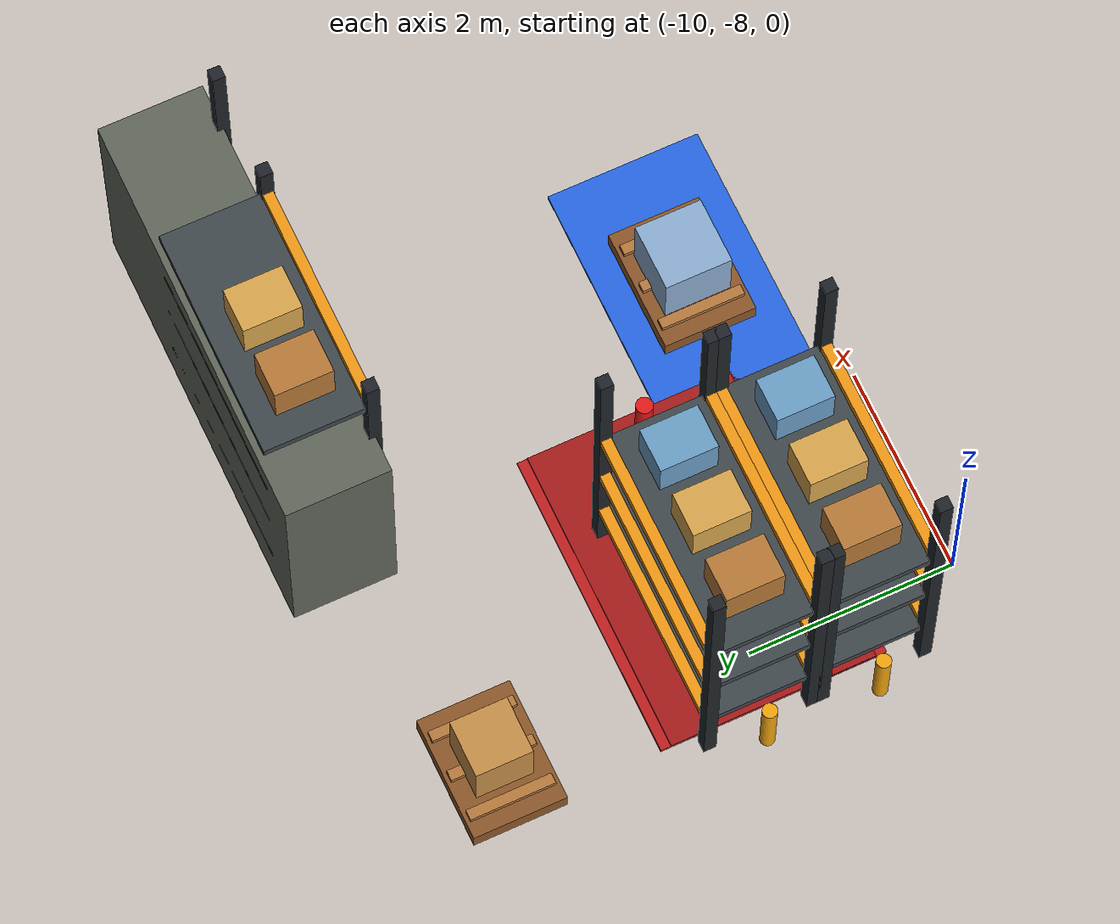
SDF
<sdf version="1.9">
 <world name="synaids_advanced_warehouse">
  <model name="shelf_4">
   <static>true</static>
   <pose>-6 -3 1.2 0 0 0</pose>
   <link name="link">
    <collision name="collision"><geometry><box><size>4 1.0 2.4</size></box></geometry></collision>
    <visual name="visual">
     <geometry><box><size>4 1.0 2.4</size></box></geometry>
     <material><ambient>0.20 0.20 0.18 1</ambient><diffuse>0.38 0.40 0.36 1</diffuse></material>
    </visual>
   </link>
  </model>
  <model name="restricted_zone">
   <static>true</static>
   <pose>-9 -6 0.02 0 0 0</pose>
   <link name="link">
    <visual name="visual">
     <geometry><box><size>3 2 0.04</size></box></geometry>
     <material><ambient>0.35 0.04 0.04 1</ambient><diffuse>0.65 0.10 0.10 1</diffuse></material>
    </visual>
   </link>
  </model>
  <model name="storage_rack_5_post_0">
   <static>true</static>
   <pose>-7.6 -3.5 1.7 0 0 0</pose>
   <link name="link">
    <visual name="visual">
     <geometry><box><size>0.12 0.12 3.4</size></box></geometry>
     <material>
      <ambient>0.12 0.14 0.16 1</ambient>
      <diffuse>0.12 0.14 0.16 1</diffuse>
      <specular>0.15 0.15 0.15 1</specular>
     </material>
    </visual>
    <collision name="collision"><geometry><box><size>0.12 0.12 3.4</size></box></geometry></collision>
   </link>
  </model>
  <model name="storage_rack_5_post_2">
   <static>true</static>
   <pose>-5.4 -3.5 1.7 0 0 0</pose>
   <link name="link">
    <visual name="visual">
     <geometry><box><size>0.12 0.12 3.4</size></box></geometry>
     <material>
      <ambient>0.12 0.14 0.16 1</ambient>
      <diffuse>0.12 0.14 0.16 1</diffuse>
      <specular>0.15 0.15 0.15 1</specular>
     </material>
    </visual>
    <collision name="collision"><geometry><box><size>0.12 0.12 3.4</size></box></geometry></collision>
   </link>
  </model>
  <model name="storage_rack_5_beam_front_0">
   <static>true</static>
   <pose>-6.5 -3.5 0.65 0 0 0</pose>
   <link name="link">
    <visual name="visual">
     <geometry><box><size>2.2 0.1 0.1</size></box></geometry>
     <material>
      <ambient>0.95 0.60 0.08 1</ambient>
      <diffuse>0.95 0.60 0.08 1</diffuse>
      <specular>0.15 0.15 0.15 1</specular>
     </material>
    </visual>
    <collision name="collision"><geometry><box><size>2.2 0.1 0.1</size></box></geometry></collision>
   </link>
  </model>
  <model name="storage_rack_5_shelf_0">
   <static>true</static>
   <pose>-6.5 -3.0 0.5700000000000001 0 0 0</pose>
   <link name="link">
    <visual name="visual">
     <geometry><box><size>2.2 1.0 0.08</size></box></geometry>
     <material>
      <ambient>0.25 0.28 0.30 1</ambient>
      <diffuse>0.25 0.28 0.30 1</diffuse>
      <specular>0.15 0.15 0.15 1</specular>
     </material>
    </visual>
    <collision name="collision"><geometry><box><size>2.2 1.0 0.08</size></box></geometry></collision>
   </link>
  </model>
  <model name="storage_rack_5_package_0_0">
   <static>true</static>
   <pose>-7.15 -3.0 0.87 0 0 0</pose>
   <link name="link">
    <visual name="visual">
     <geometry><box><size>0.42 0.55 0.42</size></box></geometry>
     <material>
      <ambient>0.72 0.48 0.22 1</ambient>
      <diffuse>0.72 0.48 0.22 1</diffuse>
      <specular>0.15 0.15 0.15 1</specular>
     </material>
    </visual>
    <collision name="collision"><geometry><box><size>0.42 0.55 0.42</size></box></geometry></collision>
   </link>
  </model>
  <model name="storage_rack_5_package_0_1">
   <static>true</static>
   <pose>-6.5 -3.0 0.87 0 0 0</pose>
   <link name="link">
    <visual name="visual">
     <geometry><box><size>0.42 0.55 0.42</size></box></geometry>
     <material>
      <ambient>0.85 0.65 0.30 1</ambient>
      <diffuse>0.85 0.65 0.30 1</diffuse>
      <specular>0.15 0.15 0.15 1</specular>
     </material>
    </visual>
    <collision name="collision"><geometry><box><size>0.42 0.55 0.42</size></box></geometry></collision>
   </link>
  </model>
  <model name="storage_rack_5_package_0_2">
   <static>true</static>
   <pose>-5.8500000000000005 -3.0 0.87 0 0 0</pose>
   <link name="link">
    <visual name="visual">
     <geometry><box><size>0.42 0.55 0.42</size></box></geometry>
     <material>
      <ambient>0.42 0.62 0.78 1</ambient>
      <diffuse>0.42 0.62 0.78 1</diffuse>
      <specular>0.15 0.15 0.15 1</specular>
     </material>
    </visual>
    <collision name="collision"><geometry><box><size>0.42 0.55 0.42</size></box></geometry></collision>
   </link>
  </model>
  <model name="storage_rack_5_beam_front_1">
   <static>true</static>
   <pose>-6.5 -3.5 1.4300000000000002 0 0 0</pose>
   <link name="link">
    <visual name="visual">
     <geometry><box><size>2.2 0.1 0.1</size></box></geometry>
     <material>
      <ambient>0.95 0.60 0.08 1</ambient>
      <diffuse>0.95 0.60 0.08 1</diffuse>
      <specular>0.15 0.15 0.15 1</specular>
     </material>
    </visual>
    <collision name="collision"><geometry><box><size>2.2 0.1 0.1</size></box></geometry></collision>
   </link>
  </model>
  <model name="storage_rack_5_shelf_1">
   <static>true</static>
   <pose>-6.5 -3.0 1.35 0 0 0</pose>
   <link name="link">
    <visual name="visual">
     <geometry><box><size>2.2 1.0 0.08</size></box></geometry>
     <material>
      <ambient>0.25 0.28 0.30 1</ambient>
      <diffuse>0.25 0.28 0.30 1</diffuse>
      <specular>0.15 0.15 0.15 1</specular>
     </material>
    </visual>
    <collision name="collision"><geometry><box><size>2.2 1.0 0.08</size></box></geometry></collision>
   </link>
  </model>
  <model name="storage_rack_5_package_1_0">
   <static>true</static>
   <pose>-7.15 -3.0 1.6500000000000001 0 0 0</pose>
   <link name="link">
    <visual name="visual">
     <geometry><box><size>0.42 0.55 0.42</size></box></geometry>
     <material>
      <ambient>0.72 0.48 0.22 1</ambient>
      <diffuse>0.72 0.48 0.22 1</diffuse>
      <specular>0.15 0.15 0.15 1</specular>
     </material>
    </visual>
    <collision name="collision"><geometry><box><size>0.42 0.55 0.42</size></box></geometry></collision>
   </link>
  </model>
  <model name="storage_rack_5_package_1_1">
   <static>true</static>
   <pose>-6.5 -3.0 1.6500000000000001 0 0 0</pose>
   <link name="link">
    <visual name="visual">
     <geometry><box><size>0.42 0.55 0.42</size></box></geometry>
     <material>
      <ambient>0.85 0.65 0.30 1</ambient>
      <diffuse>0.85 0.65 0.30 1</diffuse>
      <specular>0.15 0.15 0.15 1</specular>
     </material>
    </visual>
    <collision name="collision"><geometry><box><size>0.42 0.55 0.42</size></box></geometry></collision>
   </link>
  </model>
  <model name="storage_rack_5_beam_front_2">
   <static>true</static>
   <pose>-6.5 -3.5 2.21 0 0 0</pose>
   <link name="link">
    <visual name="visual">
     <geometry><box><size>2.2 0.1 0.1</size></box></geometry>
     <material>
      <ambient>0.95 0.60 0.08 1</ambient>
      <diffuse>0.95 0.60 0.08 1</diffuse>
      <specular>0.15 0.15 0.15 1</specular>
     </material>
    </visual>
    <collision name="collision"><geometry><box><size>2.2 0.1 0.1</size></box></geometry></collision>
   </link>
  </model>
  <model name="storage_rack_5_shelf_2">
   <static>true</static>
   <pose>-6.5 -3.0 2.13 0 0 0</pose>
   <link name="link">
    <visual name="visual">
     <geometry><box><size>2.2 1.0 0.08</size></box></geometry>
     <material>
      <ambient>0.25 0.28 0.30 1</ambient>
      <diffuse>0.25 0.28 0.30 1</diffuse>
      <specular>0.15 0.15 0.15 1</specular>
     </material>
    </visual>
    <collision name="collision"><geometry><box><size>2.2 1.0 0.08</size></box></geometry></collision>
   </link>
  </model>
  <model name="storage_rack_5_package_2_0">
   <static>true</static>
   <pose>-7.15 -3.0 2.43 0 0 0</pose>
   <link name="link">
    <visual name="visual">
     <geometry><box><size>0.42 0.55 0.42</size></box></geometry>
     <material>
      <ambient>0.72 0.48 0.22 1</ambient>
      <diffuse>0.72 0.48 0.22 1</diffuse>
      <specular>0.15 0.15 0.15 1</specular>
     </material>
    </visual>
    <collision name="collision"><geometry><box><size>0.42 0.55 0.42</size></box></geometry></collision>
   </link>
  </model>
  <model name="storage_rack_5_package_2_1">
   <static>true</static>
   <pose>-6.5 -3.0 2.43 0 0 0</pose>
   <link name="link">
    <visual name="visual">
     <geometry><box><size>0.42 0.55 0.42</size></box></geometry>
     <material>
      <ambient>0.85 0.65 0.30 1</ambient>
      <diffuse>0.85 0.65 0.30 1</diffuse>
      <specular>0.15 0.15 0.15 1</specular>
     </material>
    </visual>
    <collision name="collision"><geometry><box><size>0.42 0.55 0.42</size></box></geometry></collision>
   </link>
  </model>
  <model name="storage_rack_5_beam_front_3">
   <static>true</static>
   <pose>-6.5 -3.5 2.9899999999999998 0 0 0</pose>
   <link name="link">
    <visual name="visual">
     <geometry><box><size>2.2 0.1 0.1</size></box></geometry>
     <material>
      <ambient>0.95 0.60 0.08 1</ambient>
      <diffuse>0.95 0.60 0.08 1</diffuse>
      <specular>0.15 0.15 0.15 1</specular>
     </material>
    </visual>
    <collision name="collision"><geometry><box><size>2.2 0.1 0.1</size></box></geometry></collision>
   </link>
  </model>
  <model name="storage_rack_5_shelf_3">
   <static>true</static>
   <pose>-6.5 -3.0 2.9099999999999997 0 0 0</pose>
   <link name="link">
    <visual name="visual">
     <geometry><box><size>2.2 1.0 0.08</size></box></geometry>
     <material>
      <ambient>0.25 0.28 0.30 1</ambient>
      <diffuse>0.25 0.28 0.30 1</diffuse>
      <specular>0.15 0.15 0.15 1</specular>
     </material>
    </visual>
    <collision name="collision"><geometry><box><size>2.2 1.0 0.08</size></box></geometry></collision>
   </link>
  </model>
  <model name="storage_rack_5_package_3_0">
   <static>true</static>
   <pose>-7.15 -3.0 3.21 0 0 0</pose>
   <link name="link">
    <visual name="visual">
     <geometry><box><size>0.42 0.55 0.42</size></box></geometry>
     <material>
      <ambient>0.72 0.48 0.22 1</ambient>
      <diffuse>0.72 0.48 0.22 1</diffuse>
      <specular>0.15 0.15 0.15 1</specular>
     </material>
    </visual>
    <collision name="collision"><geometry><box><size>0.42 0.55 0.42</size></box></geometry></collision>
   </link>
  </model>
  <model name="storage_rack_5_package_3_1">
   <static>true</static>
   <pose>-6.5 -3.0 3.21 0 0 0</pose>
   <link name="link">
    <visual name="visual">
     <geometry><box><size>0.42 0.55 0.42</size></box></geometry>
     <material>
      <ambient>0.85 0.65 0.30 1</ambient>
      <diffuse>0.85 0.65 0.30 1</diffuse>
      <specular>0.15 0.15 0.15 1</specular>
     </material>
    </visual>
    <collision name="collision"><geometry><box><size>0.42 0.55 0.42</size></box></geometry></collision>
   </link>
  </model>
  <model name="storage_rack_5_guard_left">
   <static>true</static>
   <pose>-7.779999999999999 -3.0 0.35 0 0 0</pose>
   <link name="link">
    <visual name="visual">
     <geometry><cylinder><radius>0.07</radius><length>0.7</length></cylinder></geometry>
     <material>
      <ambient>0.95 0.65 0.05 1</ambient>
      <diffuse>0.95 0.65 0.05 1</diffuse>
      <specular>0.15 0.15 0.15 1</specular>
     </material>
    </visual>
    <collision name="collision">
     <geometry><cylinder><radius>0.07</radius><length>0.7</length></cylinder></geometry>
    </collision>
   </link>
  </model>
  <model name="storage_rack_6_post_0">
   <static>true</static>
   <pose>-4.4 -3.5 1.7 0 0 0</pose>
   <link name="link">
    <visual name="visual">
     <geometry><box><size>0.12 0.12 3.4</size></box></geometry>
     <material>
      <ambient>0.12 0.14 0.16 1</ambient>
      <diffuse>0.12 0.14 0.16 1</diffuse>
      <specular>0.15 0.15 0.15 1</specular>
     </material>
    </visual>
    <collision name="collision"><geometry><box><size>0.12 0.12 3.4</size></box></geometry></collision>
   </link>
  </model>
  <model name="wall_rack_3_post_0">
   <static>true</static>
   <pose>-10.6 -6.3 1.7 0 0 0</pose>
   <link name="link">
    <visual name="visual">
     <geometry><box><size>0.12 0.12 3.4</size></box></geometry>
     <material>
      <ambient>0.12 0.14 0.16 1</ambient>
      <diffuse>0.12 0.14 0.16 1</diffuse>
      <specular>0.15 0.15 0.15 1</specular>
     </material>
    </visual>
    <collision name="collision"><geometry><box><size>0.12 0.12 3.4</size></box></geometry></collision>
   </link>
  </model>
  <model name="wall_rack_3_post_1">
   <static>true</static>
   <pose>-10.6 -5.3 1.7 0 0 0</pose>
   <link name="link">
    <visual name="visual">
     <geometry><box><size>0.12 0.12 3.4</size></box></geometry>
     <material>
      <ambient>0.12 0.14 0.16 1</ambient>
      <diffuse>0.12 0.14 0.16 1</diffuse>
      <specular>0.15 0.15 0.15 1</specular>
     </material>
    </visual>
    <collision name="collision"><geometry><box><size>0.12 0.12 3.4</size></box></geometry></collision>
   </link>
  </model>
  <model name="wall_rack_3_post_2">
   <static>true</static>
   <pose>-8.4 -6.3 1.7 0 0 0</pose>
   <link name="link">
    <visual name="visual">
     <geometry><box><size>0.12 0.12 3.4</size></box></geometry>
     <material>
      <ambient>0.12 0.14 0.16 1</ambient>
      <diffuse>0.12 0.14 0.16 1</diffuse>
      <specular>0.15 0.15 0.15 1</specular>
     </material>
    </visual>
    <collision name="collision"><geometry><box><size>0.12 0.12 3.4</size></box></geometry></collision>
   </link>
  </model>
  <model name="wall_rack_3_post_3">
   <static>true</static>
   <pose>-8.4 -5.3 1.7 0 0 0</pose>
   <link name="link">
    <visual name="visual">
     <geometry><box><size>0.12 0.12 3.4</size></box></geometry>
     <material>
      <ambient>0.12 0.14 0.16 1</ambient>
      <diffuse>0.12 0.14 0.16 1</diffuse>
      <specular>0.15 0.15 0.15 1</specular>
     </material>
    </visual>
    <collision name="collision"><geometry><box><size>0.12 0.12 3.4</size></box></geometry></collision>
   </link>
  </model>
  <model name="wall_rack_3_beam_front_0">
   <static>true</static>
   <pose>-9.5 -6.3 0.65 0 0 0</pose>
   <link name="link">
    <visual name="visual">
     <geometry><box><size>2.2 0.1 0.1</size></box></geometry>
     <material>
      <ambient>0.95 0.60 0.08 1</ambient>
      <diffuse>0.95 0.60 0.08 1</diffuse>
      <specular>0.15 0.15 0.15 1</specular>
     </material>
    </visual>
    <collision name="collision"><geometry><box><size>2.2 0.1 0.1</size></box></geometry></collision>
   </link>
  </model>
  <model name="wall_rack_3_beam_back_0">
   <static>true</static>
   <pose>-9.5 -5.3 0.65 0 0 0</pose>
   <link name="link">
    <visual name="visual">
     <geometry><box><size>2.2 0.1 0.1</size></box></geometry>
     <material>
      <ambient>0.95 0.60 0.08 1</ambient>
      <diffuse>0.95 0.60 0.08 1</diffuse>
      <specular>0.15 0.15 0.15 1</specular>
     </material>
    </visual>
    <collision name="collision"><geometry><box><size>2.2 0.1 0.1</size></box></geometry></collision>
   </link>
  </model>
  <model name="wall_rack_3_shelf_0">
   <static>true</static>
   <pose>-9.5 -5.8 0.5700000000000001 0 0 0</pose>
   <link name="link">
    <visual name="visual">
     <geometry><box><size>2.2 1.0 0.08</size></box></geometry>
     <material>
      <ambient>0.25 0.28 0.30 1</ambient>
      <diffuse>0.25 0.28 0.30 1</diffuse>
      <specular>0.15 0.15 0.15 1</specular>
     </material>
    </visual>
    <collision name="collision"><geometry><box><size>2.2 1.0 0.08</size></box></geometry></collision>
   </link>
  </model>
  <model name="wall_rack_3_package_0_0">
   <static>true</static>
   <pose>-10.15 -5.8 0.87 0 0 0</pose>
   <link name="link">
    <visual name="visual">
     <geometry><box><size>0.42 0.55 0.42</size></box></geometry>
     <material>
      <ambient>0.72 0.48 0.22 1</ambient>
      <diffuse>0.72 0.48 0.22 1</diffuse>
      <specular>0.15 0.15 0.15 1</specular>
     </material>
    </visual>
    <collision name="collision"><geometry><box><size>0.42 0.55 0.42</size></box></geometry></collision>
   </link>
  </model>
  <model name="wall_rack_3_package_0_1">
   <static>true</static>
   <pose>-9.5 -5.8 0.87 0 0 0</pose>
   <link name="link">
    <visual name="visual">
     <geometry><box><size>0.42 0.55 0.42</size></box></geometry>
     <material>
      <ambient>0.85 0.65 0.30 1</ambient>
      <diffuse>0.85 0.65 0.30 1</diffuse>
      <specular>0.15 0.15 0.15 1</specular>
     </material>
    </visual>
    <collision name="collision"><geometry><box><size>0.42 0.55 0.42</size></box></geometry></collision>
   </link>
  </model>
  <model name="wall_rack_3_package_0_2">
   <static>true</static>
   <pose>-8.85 -5.8 0.87 0 0 0</pose>
   <link name="link">
    <visual name="visual">
     <geometry><box><size>0.42 0.55 0.42</size></box></geometry>
     <material>
      <ambient>0.42 0.62 0.78 1</ambient>
      <diffuse>0.42 0.62 0.78 1</diffuse>
      <specular>0.15 0.15 0.15 1</specular>
     </material>
    </visual>
    <collision name="collision"><geometry><box><size>0.42 0.55 0.42</size></box></geometry></collision>
   </link>
  </model>
  <model name="wall_rack_3_beam_front_1">
   <static>true</static>
   <pose>-9.5 -6.3 1.4300000000000002 0 0 0</pose>
   <link name="link">
    <visual name="visual">
     <geometry><box><size>2.2 0.1 0.1</size></box></geometry>
     <material>
      <ambient>0.95 0.60 0.08 1</ambient>
      <diffuse>0.95 0.60 0.08 1</diffuse>
      <specular>0.15 0.15 0.15 1</specular>
     </material>
    </visual>
    <collision name="collision"><geometry><box><size>2.2 0.1 0.1</size></box></geometry></collision>
   </link>
  </model>
  <model name="wall_rack_3_beam_back_1">
   <static>true</static>
   <pose>-9.5 -5.3 1.4300000000000002 0 0 0</pose>
   <link name="link">
    <visual name="visual">
     <geometry><box><size>2.2 0.1 0.1</size></box></geometry>
     <material>
      <ambient>0.95 0.60 0.08 1</ambient>
      <diffuse>0.95 0.60 0.08 1</diffuse>
      <specular>0.15 0.15 0.15 1</specular>
     </material>
    </visual>
    <collision name="collision"><geometry><box><size>2.2 0.1 0.1</size></box></geometry></collision>
   </link>
  </model>
  <model name="wall_rack_3_shelf_1">
   <static>true</static>
   <pose>-9.5 -5.8 1.35 0 0 0</pose>
   <link name="link">
    <visual name="visual">
     <geometry><box><size>2.2 1.0 0.08</size></box></geometry>
     <material>
      <ambient>0.25 0.28 0.30 1</ambient>
      <diffuse>0.25 0.28 0.30 1</diffuse>
      <specular>0.15 0.15 0.15 1</specular>
     </material>
    </visual>
    <collision name="collision"><geometry><box><size>2.2 1.0 0.08</size></box></geometry></collision>
   </link>
  </model>
  <model name="wall_rack_3_package_1_0">
   <static>true</static>
   <pose>-10.15 -5.8 1.6500000000000001 0 0 0</pose>
   <link name="link">
    <visual name="visual">
     <geometry><box><size>0.42 0.55 0.42</size></box></geometry>
     <material>
      <ambient>0.72 0.48 0.22 1</ambient>
      <diffuse>0.72 0.48 0.22 1</diffuse>
      <specular>0.15 0.15 0.15 1</specular>
     </material>
    </visual>
    <collision name="collision"><geometry><box><size>0.42 0.55 0.42</size></box></geometry></collision>
   </link>
  </model>
  <model name="wall_rack_3_package_1_1">
   <static>true</static>
   <pose>-9.5 -5.8 1.6500000000000001 0 0 0</pose>
   <link name="link">
    <visual name="visual">
     <geometry><box><size>0.42 0.55 0.42</size></box></geometry>
     <material>
      <ambient>0.85 0.65 0.30 1</ambient>
      <diffuse>0.85 0.65 0.30 1</diffuse>
      <specular>0.15 0.15 0.15 1</specular>
     </material>
    </visual>
    <collision name="collision"><geometry><box><size>0.42 0.55 0.42</size></box></geometry></collision>
   </link>
  </model>
  <model name="wall_rack_3_package_1_2">
   <static>true</static>
   <pose>-8.85 -5.8 1.6500000000000001 0 0 0</pose>
   <link name="link">
    <visual name="visual">
     <geometry><box><size>0.42 0.55 0.42</size></box></geometry>
     <material>
      <ambient>0.42 0.62 0.78 1</ambient>
      <diffuse>0.42 0.62 0.78 1</diffuse>
      <specular>0.15 0.15 0.15 1</specular>
     </material>
    </visual>
    <collision name="collision"><geometry><box><size>0.42 0.55 0.42</size></box></geometry></collision>
   </link>
  </model>
  <model name="wall_rack_3_beam_front_2">
   <static>true</static>
   <pose>-9.5 -6.3 2.21 0 0 0</pose>
   <link name="link">
    <visual name="visual">
     <geometry><box><size>2.2 0.1 0.1</size></box></geometry>
     <material>
      <ambient>0.95 0.60 0.08 1</ambient>
      <diffuse>0.95 0.60 0.08 1</diffuse>
      <specular>0.15 0.15 0.15 1</specular>
     </material>
    </visual>
    <collision name="collision"><geometry><box><size>2.2 0.1 0.1</size></box></geometry></collision>
   </link>
  </model>
  <model name="wall_rack_3_beam_back_2">
   <static>true</static>
   <pose>-9.5 -5.3 2.21 0 0 0</pose>
   <link name="link">
    <visual name="visual">
     <geometry><box><size>2.2 0.1 0.1</size></box></geometry>
     <material>
      <ambient>0.95 0.60 0.08 1</ambient>
      <diffuse>0.95 0.60 0.08 1</diffuse>
      <specular>0.15 0.15 0.15 1</specular>
     </material>
    </visual>
    <collision name="collision"><geometry><box><size>2.2 0.1 0.1</size></box></geometry></collision>
   </link>
  </model>
  <model name="wall_rack_3_shelf_2">
   <static>true</static>
   <pose>-9.5 -5.8 2.13 0 0 0</pose>
   <link name="link">
    <visual name="visual">
     <geometry><box><size>2.2 1.0 0.08</size></box></geometry>
     <material>
      <ambient>0.25 0.28 0.30 1</ambient>
      <diffuse>0.25 0.28 0.30 1</diffuse>
      <specular>0.15 0.15 0.15 1</specular>
     </material>
    </visual>
    <collision name="collision"><geometry><box><size>2.2 1.0 0.08</size></box></geometry></collision>
   </link>
  </model>
  <model name="wall_rack_3_package_2_0">
   <static>true</static>
   <pose>-10.15 -5.8 2.43 0 0 0</pose>
   <link name="link">
    <visual name="visual">
     <geometry><box><size>0.42 0.55 0.42</size></box></geometry>
     <material>
      <ambient>0.72 0.48 0.22 1</ambient>
      <diffuse>0.72 0.48 0.22 1</diffuse>
      <specular>0.15 0.15 0.15 1</specular>
     </material>
    </visual>
    <collision name="collision"><geometry><box><size>0.42 0.55 0.42</size></box></geometry></collision>
   </link>
  </model>
  <model name="wall_rack_3_package_2_1">
   <static>true</static>
   <pose>-9.5 -5.8 2.43 0 0 0</pose>
   <link name="link">
    <visual name="visual">
     <geometry><box><size>0.42 0.55 0.42</size></box></geometry>
     <material>
      <ambient>0.85 0.65 0.30 1</ambient>
      <diffuse>0.85 0.65 0.30 1</diffuse>
      <specular>0.15 0.15 0.15 1</specular>
     </material>
    </visual>
    <collision name="collision"><geometry><box><size>0.42 0.55 0.42</size></box></geometry></collision>
   </link>
  </model>
  <model name="wall_rack_3_package_2_2">
   <static>true</static>
   <pose>-8.85 -5.8 2.43 0 0 0</pose>
   <link name="link">
    <visual name="visual">
     <geometry><box><size>0.42 0.55 0.42</size></box></geometry>
     <material>
      <ambient>0.42 0.62 0.78 1</ambient>
      <diffuse>0.42 0.62 0.78 1</diffuse>
      <specular>0.15 0.15 0.15 1</specular>
     </material>
    </visual>
    <collision name="collision"><geometry><box><size>0.42 0.55 0.42</size></box></geometry></collision>
   </link>
  </model>
  <model name="wall_rack_3_guard_left">
   <static>true</static>
   <pose>-10.78 -5.8 0.35 0 0 0</pose>
   <link name="link">
    <visual name="visual">
     <geometry><cylinder><radius>0.07</radius><length>0.7</length></cylinder></geometry>
     <material>
      <ambient>0.95 0.65 0.05 1</ambient>
      <diffuse>0.95 0.65 0.05 1</diffuse>
      <specular>0.15 0.15 0.15 1</specular>
     </material>
    </visual>
    <collision name="collision">
     <geometry><cylinder><radius>0.07</radius><length>0.7</length></cylinder></geometry>
    </collision>
   </link>
  </model>
  <model name="wall_rack_3_guard_right">
   <static>true</static>
   <pose>-8.22 -5.8 0.35 0 0 0</pose>
   <link name="link">
    <visual name="visual">
     <geometry><cylinder><radius>0.07</radius><length>0.7</length></cylinder></geometry>
     <material>
      <ambient>0.95 0.65 0.05 1</ambient>
      <diffuse>0.95 0.65 0.05 1</diffuse>
      <specular>0.15 0.15 0.15 1</specular>
     </material>
    </visual>
    <collision name="collision">
     <geometry><cylinder><radius>0.07</radius><length>0.7</length></cylinder></geometry>
    </collision>
   </link>
  </model>
  <model name="wall_rack_4_post_0">
   <static>true</static>
   <pose>-10.6 -7.4 1.7 0 0 0</pose>
   <link name="link">
    <visual name="visual">
     <geometry><box><size>0.12 0.12 3.4</size></box></geometry>
     <material>
      <ambient>0.12 0.14 0.16 1</ambient>
      <diffuse>0.12 0.14 0.16 1</diffuse>
      <specular>0.15 0.15 0.15 1</specular>
     </material>
    </visual>
    <collision name="collision"><geometry><box><size>0.12 0.12 3.4</size></box></geometry></collision>
   </link>
  </model>
  <model name="wall_rack_4_post_1">
   <static>true</static>
   <pose>-10.6 -6.4 1.7 0 0 0</pose>
   <link name="link">
    <visual name="visual">
     <geometry><box><size>0.12 0.12 3.4</size></box></geometry>
     <material>
      <ambient>0.12 0.14 0.16 1</ambient>
      <diffuse>0.12 0.14 0.16 1</diffuse>
      <specular>0.15 0.15 0.15 1</specular>
     </material>
    </visual>
    <collision name="collision"><geometry><box><size>0.12 0.12 3.4</size></box></geometry></collision>
   </link>
  </model>
  <model name="wall_rack_4_post_2">
   <static>true</static>
   <pose>-8.4 -7.4 1.7 0 0 0</pose>
   <link name="link">
    <visual name="visual">
     <geometry><box><size>0.12 0.12 3.4</size></box></geometry>
     <material>
      <ambient>0.12 0.14 0.16 1</ambient>
      <diffuse>0.12 0.14 0.16 1</diffuse>
      <specular>0.15 0.15 0.15 1</specular>
     </material>
    </visual>
    <collision name="collision"><geometry><box><size>0.12 0.12 3.4</size></box></geometry></collision>
   </link>
  </model>
  <model name="wall_rack_4_post_3">
   <static>true</static>
   <pose>-8.4 -6.4 1.7 0 0 0</pose>
   <link name="link">
    <visual name="visual">
     <geometry><box><size>0.12 0.12 3.4</size></box></geometry>
     <material>
      <ambient>0.12 0.14 0.16 1</ambient>
      <diffuse>0.12 0.14 0.16 1</diffuse>
      <specular>0.15 0.15 0.15 1</specular>
     </material>
    </visual>
    <collision name="collision"><geometry><box><size>0.12 0.12 3.4</size></box></geometry></collision>
   </link>
  </model>
  <model name="wall_rack_4_beam_front_0">
   <static>true</static>
   <pose>-9.5 -7.4 0.65 0 0 0</pose>
   <link name="link">
    <visual name="visual">
     <geometry><box><size>2.2 0.1 0.1</size></box></geometry>
     <material>
      <ambient>0.95 0.60 0.08 1</ambient>
      <diffuse>0.95 0.60 0.08 1</diffuse>
      <specular>0.15 0.15 0.15 1</specular>
     </material>
    </visual>
    <collision name="collision"><geometry><box><size>2.2 0.1 0.1</size></box></geometry></collision>
   </link>
  </model>
  <model name="wall_rack_4_beam_back_0">
   <static>true</static>
   <pose>-9.5 -6.4 0.65 0 0 0</pose>
   <link name="link">
    <visual name="visual">
     <geometry><box><size>2.2 0.1 0.1</size></box></geometry>
     <material>
      <ambient>0.95 0.60 0.08 1</ambient>
      <diffuse>0.95 0.60 0.08 1</diffuse>
      <specular>0.15 0.15 0.15 1</specular>
     </material>
    </visual>
    <collision name="collision"><geometry><box><size>2.2 0.1 0.1</size></box></geometry></collision>
   </link>
  </model>
  <model name="wall_rack_4_shelf_0">
   <static>true</static>
   <pose>-9.5 -6.9 0.5700000000000001 0 0 0</pose>
   <link name="link">
    <visual name="visual">
     <geometry><box><size>2.2 1.0 0.08</size></box></geometry>
     <material>
      <ambient>0.25 0.28 0.30 1</ambient>
      <diffuse>0.25 0.28 0.30 1</diffuse>
      <specular>0.15 0.15 0.15 1</specular>
     </material>
    </visual>
    <collision name="collision"><geometry><box><size>2.2 1.0 0.08</size></box></geometry></collision>
   </link>
  </model>
  <model name="wall_rack_4_package_0_0">
   <static>true</static>
   <pose>-10.15 -6.9 0.87 0 0 0</pose>
   <link name="link">
    <visual name="visual">
     <geometry><box><size>0.42 0.55 0.42</size></box></geometry>
     <material>
      <ambient>0.72 0.48 0.22 1</ambient>
      <diffuse>0.72 0.48 0.22 1</diffuse>
      <specular>0.15 0.15 0.15 1</specular>
     </material>
    </visual>
    <collision name="collision"><geometry><box><size>0.42 0.55 0.42</size></box></geometry></collision>
   </link>
  </model>
  <model name="wall_rack_4_package_0_1">
   <static>true</static>
   <pose>-9.5 -6.9 0.87 0 0 0</pose>
   <link name="link">
    <visual name="visual">
     <geometry><box><size>0.42 0.55 0.42</size></box></geometry>
     <material>
      <ambient>0.85 0.65 0.30 1</ambient>
      <diffuse>0.85 0.65 0.30 1</diffuse>
      <specular>0.15 0.15 0.15 1</specular>
     </material>
    </visual>
    <collision name="collision"><geometry><box><size>0.42 0.55 0.42</size></box></geometry></collision>
   </link>
  </model>
  <model name="wall_rack_4_package_0_2">
   <static>true</static>
   <pose>-8.85 -6.9 0.87 0 0 0</pose>
   <link name="link">
    <visual name="visual">
     <geometry><box><size>0.42 0.55 0.42</size></box></geometry>
     <material>
      <ambient>0.42 0.62 0.78 1</ambient>
      <diffuse>0.42 0.62 0.78 1</diffuse>
      <specular>0.15 0.15 0.15 1</specular>
     </material>
    </visual>
    <collision name="collision"><geometry><box><size>0.42 0.55 0.42</size></box></geometry></collision>
   </link>
  </model>
  <model name="wall_rack_4_beam_front_1">
   <static>true</static>
   <pose>-9.5 -7.4 1.4300000000000002 0 0 0</pose>
   <link name="link">
    <visual name="visual">
     <geometry><box><size>2.2 0.1 0.1</size></box></geometry>
     <material>
      <ambient>0.95 0.60 0.08 1</ambient>
      <diffuse>0.95 0.60 0.08 1</diffuse>
      <specular>0.15 0.15 0.15 1</specular>
     </material>
    </visual>
    <collision name="collision"><geometry><box><size>2.2 0.1 0.1</size></box></geometry></collision>
   </link>
  </model>
  <model name="wall_rack_4_beam_back_1">
   <static>true</static>
   <pose>-9.5 -6.4 1.4300000000000002 0 0 0</pose>
   <link name="link">
    <visual name="visual">
     <geometry><box><size>2.2 0.1 0.1</size></box></geometry>
     <material>
      <ambient>0.95 0.60 0.08 1</ambient>
      <diffuse>0.95 0.60 0.08 1</diffuse>
      <specular>0.15 0.15 0.15 1</specular>
     </material>
    </visual>
    <collision name="collision"><geometry><box><size>2.2 0.1 0.1</size></box></geometry></collision>
   </link>
  </model>
  <model name="wall_rack_4_shelf_1">
   <static>true</static>
   <pose>-9.5 -6.9 1.35 0 0 0</pose>
   <link name="link">
    <visual name="visual">
     <geometry><box><size>2.2 1.0 0.08</size></box></geometry>
     <material>
      <ambient>0.25 0.28 0.30 1</ambient>
      <diffuse>0.25 0.28 0.30 1</diffuse>
      <specular>0.15 0.15 0.15 1</specular>
     </material>
    </visual>
    <collision name="collision"><geometry><box><size>2.2 1.0 0.08</size></box></geometry></collision>
   </link>
  </model>
  <model name="wall_rack_4_package_1_0">
   <static>true</static>
   <pose>-10.15 -6.9 1.6500000000000001 0 0 0</pose>
   <link name="link">
    <visual name="visual">
     <geometry><box><size>0.42 0.55 0.42</size></box></geometry>
     <material>
      <ambient>0.72 0.48 0.22 1</ambient>
      <diffuse>0.72 0.48 0.22 1</diffuse>
      <specular>0.15 0.15 0.15 1</specular>
     </material>
    </visual>
    <collision name="collision"><geometry><box><size>0.42 0.55 0.42</size></box></geometry></collision>
   </link>
  </model>
  <model name="wall_rack_4_package_1_1">
   <static>true</static>
   <pose>-9.5 -6.9 1.6500000000000001 0 0 0</pose>
   <link name="link">
    <visual name="visual">
     <geometry><box><size>0.42 0.55 0.42</size></box></geometry>
     <material>
      <ambient>0.85 0.65 0.30 1</ambient>
      <diffuse>0.85 0.65 0.30 1</diffuse>
      <specular>0.15 0.15 0.15 1</specular>
     </material>
    </visual>
    <collision name="collision"><geometry><box><size>0.42 0.55 0.42</size></box></geometry></collision>
   </link>
  </model>
  <model name="wall_rack_4_package_1_2">
   <static>true</static>
   <pose>-8.85 -6.9 1.6500000000000001 0 0 0</pose>
   <link name="link">
    <visual name="visual">
     <geometry><box><size>0.42 0.55 0.42</size></box></geometry>
     <material>
      <ambient>0.42 0.62 0.78 1</ambient>
      <diffuse>0.42 0.62 0.78 1</diffuse>
      <specular>0.15 0.15 0.15 1</specular>
     </material>
    </visual>
    <collision name="collision"><geometry><box><size>0.42 0.55 0.42</size></box></geometry></collision>
   </link>
  </model>
  <model name="wall_rack_4_beam_front_2">
   <static>true</static>
   <pose>-9.5 -7.4 2.21 0 0 0</pose>
   <link name="link">
    <visual name="visual">
     <geometry><box><size>2.2 0.1 0.1</size></box></geometry>
     <material>
      <ambient>0.95 0.60 0.08 1</ambient>
      <diffuse>0.95 0.60 0.08 1</diffuse>
      <specular>0.15 0.15 0.15 1</specular>
     </material>
    </visual>
    <collision name="collision"><geometry><box><size>2.2 0.1 0.1</size></box></geometry></collision>
   </link>
  </model>
  <model name="wall_rack_4_beam_back_2">
   <static>true</static>
   <pose>-9.5 -6.4 2.21 0 0 0</pose>
   <link name="link">
    <visual name="visual">
     <geometry><box><size>2.2 0.1 0.1</size></box></geometry>
     <material>
      <ambient>0.95 0.60 0.08 1</ambient>
      <diffuse>0.95 0.60 0.08 1</diffuse>
      <specular>0.15 0.15 0.15 1</specular>
     </material>
    </visual>
    <collision name="collision"><geometry><box><size>2.2 0.1 0.1</size></box></geometry></collision>
   </link>
  </model>
  <model name="wall_rack_4_shelf_2">
   <static>true</static>
   <pose>-9.5 -6.9 2.13 0 0 0</pose>
   <link name="link">
    <visual name="visual">
     <geometry><box><size>2.2 1.0 0.08</size></box></geometry>
     <material>
      <ambient>0.25 0.28 0.30 1</ambient>
      <diffuse>0.25 0.28 0.30 1</diffuse>
      <specular>0.15 0.15 0.15 1</specular>
     </material>
    </visual>
    <collision name="collision"><geometry><box><size>2.2 1.0 0.08</size></box></geometry></collision>
   </link>
  </model>
  <model name="wall_rack_4_package_2_0">
   <static>true</static>
   <pose>-10.15 -6.9 2.43 0 0 0</pose>
   <link name="link">
    <visual name="visual">
     <geometry><box><size>0.42 0.55 0.42</size></box></geometry>
     <material>
      <ambient>0.72 0.48 0.22 1</ambient>
      <diffuse>0.72 0.48 0.22 1</diffuse>
      <specular>0.15 0.15 0.15 1</specular>
     </material>
    </visual>
    <collision name="collision"><geometry><box><size>0.42 0.55 0.42</size></box></geometry></collision>
   </link>
  </model>
  <model name="wall_rack_4_package_2_1">
   <static>true</static>
   <pose>-9.5 -6.9 2.43 0 0 0</pose>
   <link name="link">
    <visual name="visual">
     <geometry><box><size>0.42 0.55 0.42</size></box></geometry>
     <material>
      <ambient>0.85 0.65 0.30 1</ambient>
      <diffuse>0.85 0.65 0.30 1</diffuse>
      <specular>0.15 0.15 0.15 1</specular>
     </material>
    </visual>
    <collision name="collision"><geometry><box><size>0.42 0.55 0.42</size></box></geometry></collision>
   </link>
  </model>
  <model name="wall_rack_4_package_2_2">
   <static>true</static>
   <pose>-8.85 -6.9 2.43 0 0 0</pose>
   <link name="link">
    <visual name="visual">
     <geometry><box><size>0.42 0.55 0.42</size></box></geometry>
     <material>
      <ambient>0.42 0.62 0.78 1</ambient>
      <diffuse>0.42 0.62 0.78 1</diffuse>
      <specular>0.15 0.15 0.15 1</specular>
     </material>
    </visual>
    <collision name="collision"><geometry><box><size>0.42 0.55 0.42</size></box></geometry></collision>
   </link>
  </model>
  <model name="wall_rack_4_guard_left">
   <static>true</static>
   <pose>-10.78 -6.9 0.35 0 0 0</pose>
   <link name="link">
    <visual name="visual">
     <geometry><cylinder><radius>0.07</radius><length>0.7</length></cylinder></geometry>
     <material>
      <ambient>0.95 0.65 0.05 1</ambient>
      <diffuse>0.95 0.65 0.05 1</diffuse>
      <specular>0.15 0.15 0.15 1</specular>
     </material>
    </visual>
    <collision name="collision">
     <geometry><cylinder><radius>0.07</radius><length>0.7</length></cylinder></geometry>
    </collision>
   </link>
  </model>
  <model name="wall_rack_4_guard_right">
   <static>true</static>
   <pose>-8.22 -6.9 0.35 0 0 0</pose>
   <link name="link">
    <visual name="visual">
     <geometry><cylinder><radius>0.07</radius><length>0.7</length></cylinder></geometry>
     <material>
      <ambient>0.95 0.65 0.05 1</ambient>
      <diffuse>0.95 0.65 0.05 1</diffuse>
      <specular>0.15 0.15 0.15 1</specular>
     </material>
    </visual>
    <collision name="collision">
     <geometry><cylinder><radius>0.07</radius><length>0.7</length></cylinder></geometry>
    </collision>
   </link>
  </model>
  <model name="dropoff_zone_1">
   <static>true</static>
   <pose>-6.5 -7.0 0.012 0 0 0</pose>
   <link name="link">
    <visual name="visual">
     <geometry><box><size>2.5 1.5 0.025</size></box></geometry>
     <material>
      <ambient>0.15 0.40 0.90 1</ambient>
      <diffuse>0.15 0.40 0.90 1</diffuse>
      <specular>0.15 0.15 0.15 1</specular>
     </material>
    </visual>
   </link>
  </model>
  <model name="dropoff_pallet_1_base">
   <static>true</static>
   <pose>-6.5 -7.0 0.11 0 0 0</pose>
   <link name="link">
    <visual name="visual">
     <geometry><box><size>1.2 0.9 0.18</size></box></geometry>
     <material>
      <ambient>0.55 0.34 0.16 1</ambient>
      <diffuse>0.55 0.34 0.16 1</diffuse>
      <specular>0.15 0.15 0.15 1</specular>
     </material>
    </visual>
    <collision name="collision"><geometry><box><size>1.2 0.9 0.18</size></box></geometry></collision>
   </link>
  </model>
  <model name="dropoff_pallet_1_slat_0">
   <static>true</static>
   <pose>-6.9 -7.0 0.22 0 0 0</pose>
   <link name="link">
    <visual name="visual">
     <geometry><box><size>0.1 0.82 0.06</size></box></geometry>
     <material>
      <ambient>0.72 0.48 0.24 1</ambient>
      <diffuse>0.72 0.48 0.24 1</diffuse>
      <specular>0.15 0.15 0.15 1</specular>
     </material>
    </visual>
    <collision name="collision"><geometry><box><size>0.1 0.82 0.06</size></box></geometry></collision>
   </link>
  </model>
  <model name="dropoff_pallet_1_slat_1">
   <static>true</static>
   <pose>-6.5 -7.0 0.22 0 0 0</pose>
   <link name="link">
    <visual name="visual">
     <geometry><box><size>0.1 0.82 0.06</size></box></geometry>
     <material>
      <ambient>0.72 0.48 0.24 1</ambient>
      <diffuse>0.72 0.48 0.24 1</diffuse>
      <specular>0.15 0.15 0.15 1</specular>
     </material>
    </visual>
    <collision name="collision"><geometry><box><size>0.1 0.82 0.06</size></box></geometry></collision>
   </link>
  </model>
  <model name="dropoff_pallet_1_slat_2">
   <static>true</static>
   <pose>-6.1000000000000005 -7.0 0.22 0 0 0</pose>
   <link name="link">
    <visual name="visual">
     <geometry><box><size>0.1 0.82 0.06</size></box></geometry>
     <material>
      <ambient>0.72 0.48 0.24 1</ambient>
      <diffuse>0.72 0.48 0.24 1</diffuse>
      <specular>0.15 0.15 0.15 1</specular>
     </material>
    </visual>
    <collision name="collision"><geometry><box><size>0.1 0.82 0.06</size></box></geometry></collision>
   </link>
  </model>
  <model name="dropoff_package_1">
   <static>true</static>
   <pose>-6.5 -7.0 0.48 0 0 0</pose>
   <link name="link">
    <visual name="visual">
     <geometry><box><size>0.65 0.65 0.65</size></box></geometry>
     <material>
      <ambient>0.55 0.68 0.82 1</ambient>
      <diffuse>0.55 0.68 0.82 1</diffuse>
      <specular>0.15 0.15 0.15 1</specular>
     </material>
    </visual>
    <collision name="collision"><geometry><box><size>0.65 0.65 0.65</size></box></geometry></collision>
   </link>
  </model>
  <model name="loose_pallet_1_base">
   <static>true</static>
   <pose>-10.0 -3.5 0.1 0 0 0</pose>
   <link name="link">
    <visual name="visual">
     <geometry><box><size>1.2 0.9 0.18</size></box></geometry>
     <material>
      <ambient>0.55 0.34 0.16 1</ambient>
      <diffuse>0.55 0.34 0.16 1</diffuse>
      <specular>0.15 0.15 0.15 1</specular>
     </material>
    </visual>
    <collision name="collision"><geometry><box><size>1.2 0.9 0.18</size></box></geometry></collision>
   </link>
  </model>
  <model name="loose_pallet_1_slat_0">
   <static>true</static>
   <pose>-10.4 -3.5 0.21000000000000002 0 0 0</pose>
   <link name="link">
    <visual name="visual">
     <geometry><box><size>0.1 0.82 0.06</size></box></geometry>
     <material>
      <ambient>0.72 0.48 0.24 1</ambient>
      <diffuse>0.72 0.48 0.24 1</diffuse>
      <specular>0.15 0.15 0.15 1</specular>
     </material>
    </visual>
    <collision name="collision"><geometry><box><size>0.1 0.82 0.06</size></box></geometry></collision>
   </link>
  </model>
  <model name="loose_pallet_1_slat_1">
   <static>true</static>
   <pose>-10.0 -3.5 0.21000000000000002 0 0 0</pose>
   <link name="link">
    <visual name="visual">
     <geometry><box><size>0.1 0.82 0.06</size></box></geometry>
     <material>
      <ambient>0.72 0.48 0.24 1</ambient>
      <diffuse>0.72 0.48 0.24 1</diffuse>
      <specular>0.15 0.15 0.15 1</specular>
     </material>
    </visual>
    <collision name="collision"><geometry><box><size>0.1 0.82 0.06</size></box></geometry></collision>
   </link>
  </model>
  <model name="loose_pallet_1_slat_2">
   <static>true</static>
   <pose>-9.6 -3.5 0.21000000000000002 0 0 0</pose>
   <link name="link">
    <visual name="visual">
     <geometry><box><size>0.1 0.82 0.06</size></box></geometry>
     <material>
      <ambient>0.72 0.48 0.24 1</ambient>
      <diffuse>0.72 0.48 0.24 1</diffuse>
      <specular>0.15 0.15 0.15 1</specular>
     </material>
    </visual>
    <collision name="collision"><geometry><box><size>0.1 0.82 0.06</size></box></geometry></collision>
   </link>
  </model>
  <model name="loose_package_1">
   <static>true</static>
   <pose>-10.0 -3.5 0.48 0 0 0</pose>
   <link name="link">
    <visual name="visual">
     <geometry><box><size>0.55 0.55 0.55</size></box></geometry>
     <material>
      <ambient>0.78 0.56 0.28 1</ambient>
      <diffuse>0.78 0.56 0.28 1</diffuse>
      <specular>0.15 0.15 0.15 1</specular>
     </material>
    </visual>
    <collision name="collision"><geometry><box><size>0.55 0.55 0.55</size></box></geometry></collision>
   </link>
  </model>
  <model name="enhanced_restricted_zone">
   <static>true</static>
   <pose>-9.0 -6.0 0.012 0 0 0</pose>
   <link name="link">
    <visual name="visual">
     <geometry><box><size>3.0 2.2 0.025</size></box></geometry>
     <material>
      <ambient>0.75 0.12 0.12 1</ambient>
      <diffuse>0.75 0.12 0.12 1</diffuse>
      <specular>0.15 0.15 0.15 1</specular>
     </material>
    </visual>
   </link>
  </model>
  <model name="restricted_post_0">
   <static>true</static>
   <pose>-10.2 -6.0 0.45 0 0 0</pose>
   <link name="link">
    <visual name="visual">
     <geometry><cylinder><radius>0.08</radius><length>0.9</length></cylinder></geometry>
     <material>
      <ambient>0.90 0.10 0.10 1</ambient>
      <diffuse>0.90 0.10 0.10 1</diffuse>
      <specular>0.15 0.15 0.15 1</specular>
     </material>
    </visual>
    <collision name="collision">
     <geometry><cylinder><radius>0.08</radius><length>0.9</length></cylinder></geometry>
    </collision>
   </link>
  </model>
  <model name="restricted_post_1">
   <static>true</static>
   <pose>-9.0 -6.0 0.45 0 0 0</pose>
   <link name="link">
    <visual name="visual">
     <geometry><cylinder><radius>0.08</radius><length>0.9</length></cylinder></geometry>
     <material>
      <ambient>0.90 0.10 0.10 1</ambient>
      <diffuse>0.90 0.10 0.10 1</diffuse>
      <specular>0.15 0.15 0.15 1</specular>
     </material>
    </visual>
    <collision name="collision">
     <geometry><cylinder><radius>0.08</radius><length>0.9</length></cylinder></geometry>
    </collision>
   </link>
  </model>
  <model name="restricted_post_2">
   <static>true</static>
   <pose>-7.8 -6.0 0.45 0 0 0</pose>
   <link name="link">
    <visual name="visual">
     <geometry><cylinder><radius>0.08</radius><length>0.9</length></cylinder></geometry>
     <material>
      <ambient>0.90 0.10 0.10 1</ambient>
      <diffuse>0.90 0.10 0.10 1</diffuse>
      <specular>0.15 0.15 0.15 1</specular>
     </material>
    </visual>
    <collision name="collision">
     <geometry><cylinder><radius>0.08</radius><length>0.9</length></cylinder></geometry>
    </collision>
   </link>
  </model>
 </world>
</sdf>
